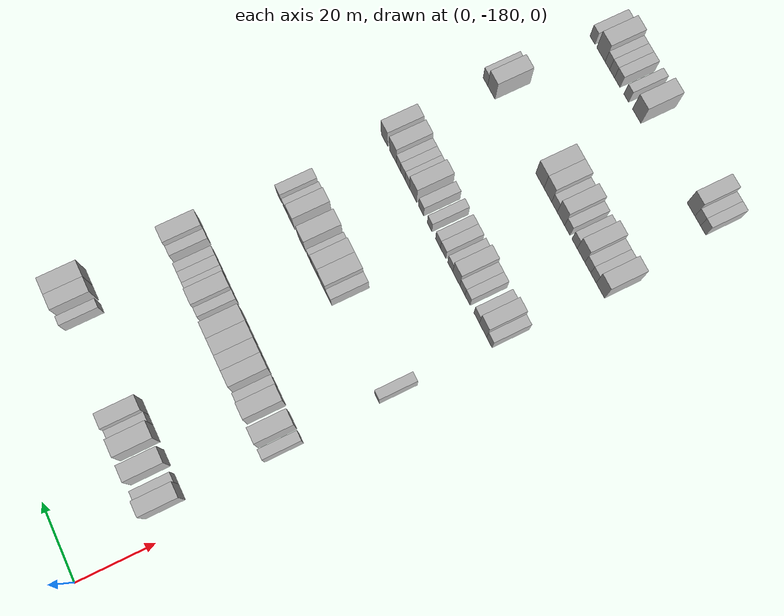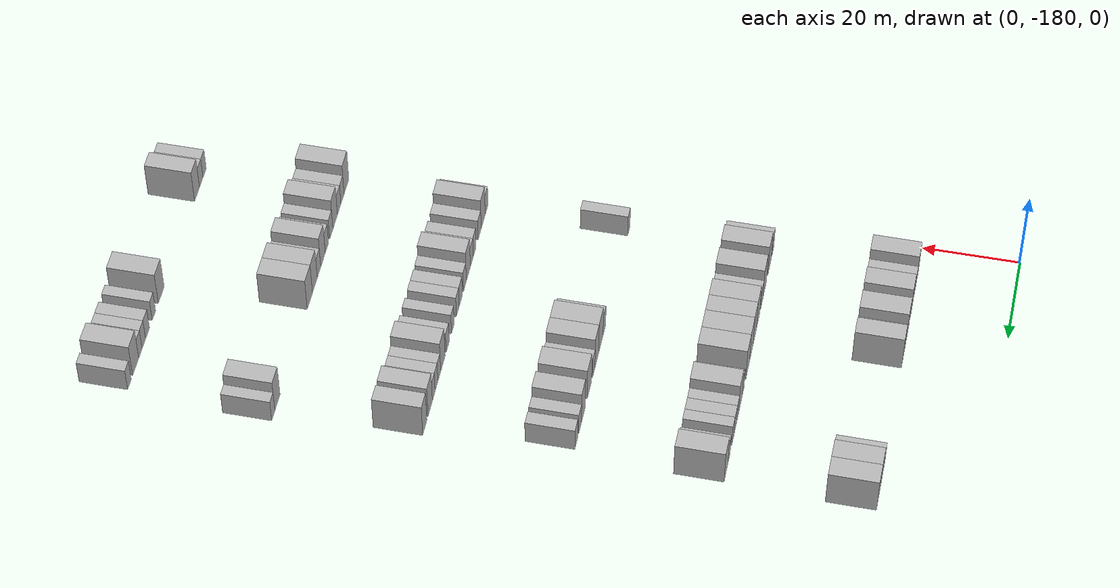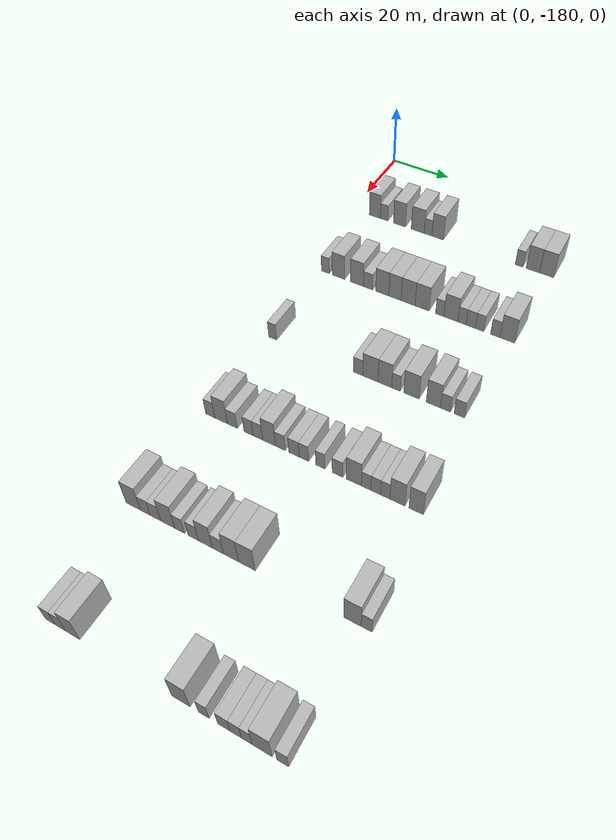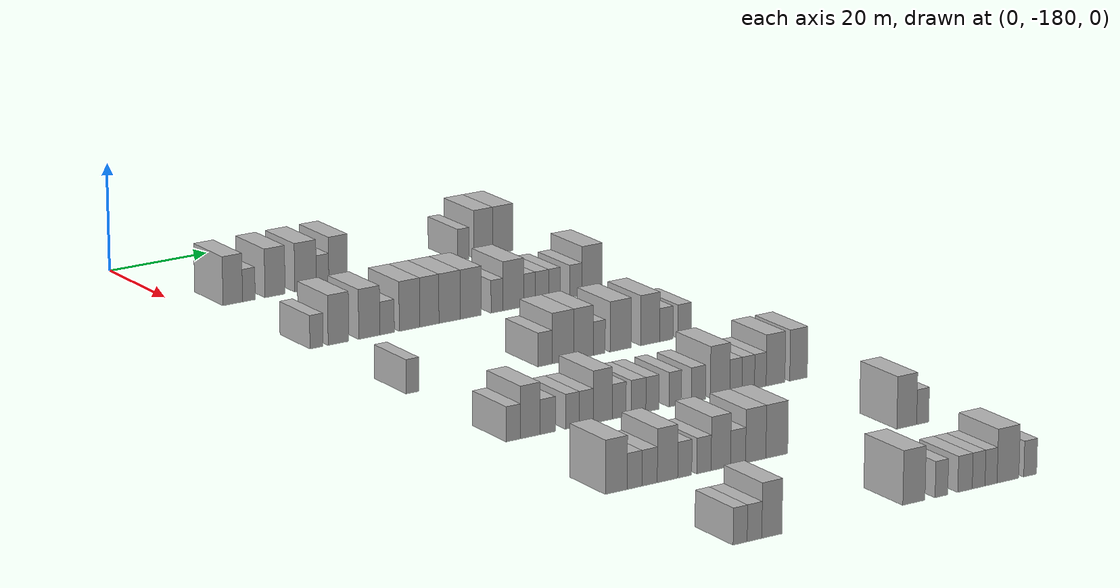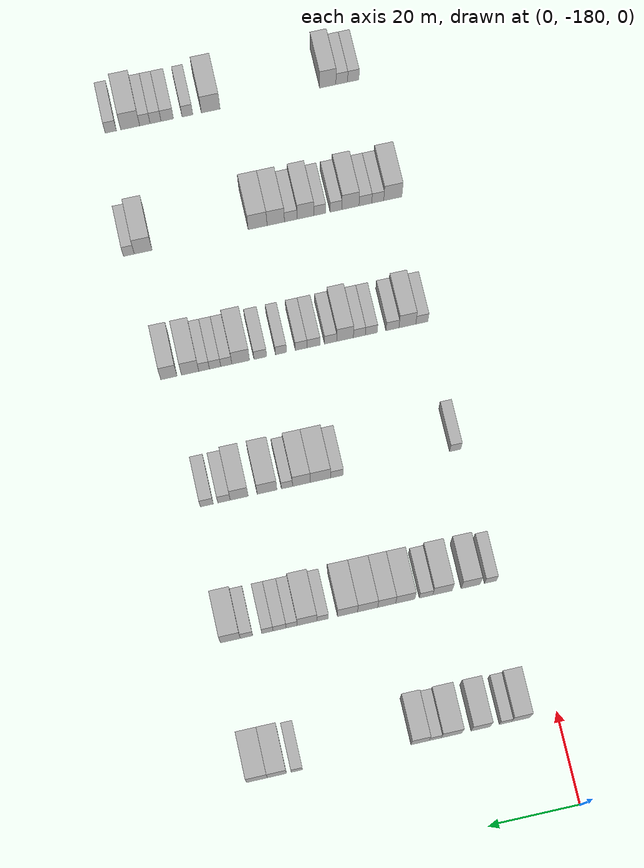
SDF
<sdf version="1.6">
 <world name="default">
  <model name="building_74">
   <static>1</static>
   <pose>25.0000 -171.9958 0 0.000000 0.000000 0.000000</pose>
   <link name="link">
    <pose>0 0 4.50 0 0 0</pose>
    <collision name="collision"><geometry><box><size>10.0000 3.9927 9.0000</size></box></geometry></collision>
    <visual name="visual">
     <cast_shadows>0</cast_shadows>
     <geometry><box><size>10.0000 3.9927 9.0000</size></box></geometry>
     <material>
      <script>
       <uri>model://HANNAS_wall/materials/scripts</uri>
       <uri>model://HANNAS_wall/materials/textures</uri>
       <name>vrc/HANNAS_wall</name>
      </script>
     </material>
    </visual>
   </link>
  </model>
  <model name="building_75">
   <static>1</static>
   <pose>25.0000 -168.7039 0 0.000000 0.000000 0.000000</pose>
   <link name="link">
    <pose>0 0 3.00 0 0 0</pose>
    <collision name="collision"><geometry><box><size>10.0000 2.5911 6.0000</size></box></geometry></collision>
    <visual name="visual">
     <cast_shadows>0</cast_shadows>
     <geometry><box><size>10.0000 2.5911 6.0000</size></box></geometry>
     <material>
      <script>
       <uri>model://HANNAS_wall/materials/scripts</uri>
       <uri>model://HANNAS_wall/materials/textures</uri>
       <name>vrc/HANNAS_wall</name>
      </script>
     </material>
    </visual>
   </link>
  </model>
  <model name="building_76">
   <static>1</static>
   <pose>25.0000 -163.3264 0 0.000000 0.000000 0.000000</pose>
   <link name="link">
    <pose>0 0 4.50 0 0 0</pose>
    <collision name="collision"><geometry><box><size>10.0000 4.1639 9.0000</size></box></geometry></collision>
    <visual name="visual">
     <cast_shadows>0</cast_shadows>
     <geometry><box><size>10.0000 4.1639 9.0000</size></box></geometry>
     <material>
      <script>
       <uri>model://HANNAS_wall/materials/scripts</uri>
       <uri>model://HANNAS_wall/materials/textures</uri>
       <name>vrc/HANNAS_wall</name>
      </script>
     </material>
    </visual>
   </link>
  </model>
  <model name="building_77">
   <static>1</static>
   <pose>25.0000 -157.0064 0 0.000000 0.000000 0.000000</pose>
   <link name="link">
    <pose>0 0 4.50 0 0 0</pose>
    <collision name="collision"><geometry><box><size>10.0000 4.4759 9.0000</size></box></geometry></collision>
    <visual name="visual">
     <cast_shadows>0</cast_shadows>
     <geometry><box><size>10.0000 4.4759 9.0000</size></box></geometry>
     <material>
      <script>
       <uri>model://HANNAS_wall/materials/scripts</uri>
       <uri>model://HANNAS_wall/materials/textures</uri>
       <name>vrc/HANNAS_wall</name>
      </script>
     </material>
    </visual>
   </link>
  </model>
  <model name="building_78">
   <static>1</static>
   <pose>25.0000 -153.4630 0 0.000000 0.000000 0.000000</pose>
   <link name="link">
    <pose>0 0 3.00 0 0 0</pose>
    <collision name="collision"><geometry><box><size>10.0000 2.6110 6.0000</size></box></geometry></collision>
    <visual name="visual">
     <cast_shadows>0</cast_shadows>
     <geometry><box><size>10.0000 2.6110 6.0000</size></box></geometry>
     <material>
      <script>
       <uri>model://HANNAS_wall/materials/scripts</uri>
       <uri>model://HANNAS_wall/materials/textures</uri>
       <name>vrc/HANNAS_wall</name>
      </script>
     </material>
    </visual>
   </link>
  </model>
  <model name="building_79">
   <static>1</static>
   <pose>25.0000 -150.1864 0 0.000000 0.000000 0.000000</pose>
   <link name="link">
    <pose>0 0 4.50 0 0 0</pose>
    <collision name="collision"><geometry><box><size>10.0000 3.9421 9.0000</size></box></geometry></collision>
    <visual name="visual">
     <cast_shadows>0</cast_shadows>
     <geometry><box><size>10.0000 3.9421 9.0000</size></box></geometry>
     <material>
      <script>
       <uri>model://HANNAS_wall/materials/scripts</uri>
       <uri>model://HANNAS_wall/materials/textures</uri>
       <name>vrc/HANNAS_wall</name>
      </script>
     </material>
    </visual>
   </link>
  </model>
  <model name="building_80">
   <static>1</static>
   <pose>25.0000 -123.5482 0 0.000000 0.000000 0.000000</pose>
   <link name="link">
    <pose>0 0 3.00 0 0 0</pose>
    <collision name="collision"><geometry><box><size>10.0000 2.4448 6.0000</size></box></geometry></collision>
    <visual name="visual">
     <cast_shadows>0</cast_shadows>
     <geometry><box><size>10.0000 2.4448 6.0000</size></box></geometry>
     <material>
      <script>
       <uri>model://HANNAS_wall/materials/scripts</uri>
       <uri>model://HANNAS_wall/materials/textures</uri>
       <name>vrc/HANNAS_wall</name>
      </script>
     </material>
    </visual>
   </link>
  </model>
  <model name="building_81">
   <static>1</static>
   <pose>25.0000 -119.2652 0 0.000000 0.000000 0.000000</pose>
   <link name="link">
    <pose>0 0 4.50 0 0 0</pose>
    <collision name="collision"><geometry><box><size>10.0000 4.1213 9.0000</size></box></geometry></collision>
    <visual name="visual">
     <cast_shadows>0</cast_shadows>
     <geometry><box><size>10.0000 4.1213 9.0000</size></box></geometry>
     <material>
      <script>
       <uri>model://HANNAS_wall/materials/scripts</uri>
       <uri>model://HANNAS_wall/materials/textures</uri>
       <name>vrc/HANNAS_wall</name>
      </script>
     </material>
    </visual>
   </link>
  </model>
  <model name="building_82">
   <static>1</static>
   <pose>25.0000 -114.9816 0 0.000000 0.000000 0.000000</pose>
   <link name="link">
    <pose>0 0 4.50 0 0 0</pose>
    <collision name="collision"><geometry><box><size>10.0000 4.4458 9.0000</size></box></geometry></collision>
    <visual name="visual">
     <cast_shadows>0</cast_shadows>
     <geometry><box><size>10.0000 4.4458 9.0000</size></box></geometry>
     <material>
      <script>
       <uri>model://HANNAS_wall/materials/scripts</uri>
       <uri>model://HANNAS_wall/materials/textures</uri>
       <name>vrc/HANNAS_wall</name>
      </script>
     </material>
    </visual>
   </link>
  </model>
  <model name="building_299">
   <static>1</static>
   <pose>55.0000 -172.9315 0 0.000000 0.000000 0.000000</pose>
   <link name="link">
    <pose>0 0 3.00 0 0 0</pose>
    <collision name="collision"><geometry><box><size>10.0000 2.6503 6.0000</size></box></geometry></collision>
    <visual name="visual">
     <cast_shadows>0</cast_shadows>
     <geometry><box><size>10.0000 2.6503 6.0000</size></box></geometry>
     <material>
      <script>
       <uri>model://HANNAS_wall/materials/scripts</uri>
       <uri>model://HANNAS_wall/materials/textures</uri>
       <name>vrc/HANNAS_wall</name>
      </script>
     </material>
    </visual>
   </link>
  </model>
  <model name="building_300">
   <static>1</static>
   <pose>55.0000 -168.5186 0 0.000000 0.000000 0.000000</pose>
   <link name="link">
    <pose>0 0 4.50 0 0 0</pose>
    <collision name="collision"><geometry><box><size>10.0000 4.1756 9.0000</size></box></geometry></collision>
    <visual name="visual">
     <cast_shadows>0</cast_shadows>
     <geometry><box><size>10.0000 4.1756 9.0000</size></box></geometry>
     <material>
      <script>
       <uri>model://HANNAS_wall/materials/scripts</uri>
       <uri>model://HANNAS_wall/materials/textures</uri>
       <name>vrc/HANNAS_wall</name>
      </script>
     </material>
    </visual>
   </link>
  </model>
  <model name="building_301">
   <static>1</static>
   <pose>55.0000 -162.2857 0 0.000000 0.000000 0.000000</pose>
   <link name="link">
    <pose>0 0 4.50 0 0 0</pose>
    <collision name="collision"><geometry><box><size>10.0000 4.2903 9.0000</size></box></geometry></collision>
    <visual name="visual">
     <cast_shadows>0</cast_shadows>
     <geometry><box><size>10.0000 4.2903 9.0000</size></box></geometry>
     <material>
      <script>
       <uri>model://HANNAS_wall/materials/scripts</uri>
       <uri>model://HANNAS_wall/materials/textures</uri>
       <name>vrc/HANNAS_wall</name>
      </script>
     </material>
    </visual>
   </link>
  </model>
  <model name="building_302">
   <static>1</static>
   <pose>55.0000 -158.6615 0 0.000000 0.000000 0.000000</pose>
   <link name="link">
    <pose>0 0 3.00 0 0 0</pose>
    <collision name="collision"><geometry><box><size>10.0000 2.9580 6.0000</size></box></geometry></collision>
    <visual name="visual">
     <cast_shadows>0</cast_shadows>
     <geometry><box><size>10.0000 2.9580 6.0000</size></box></geometry>
     <material>
      <script>
       <uri>model://HANNAS_wall/materials/scripts</uri>
       <uri>model://HANNAS_wall/materials/textures</uri>
       <name>vrc/HANNAS_wall</name>
      </script>
     </material>
    </visual>
   </link>
  </model>
  <model name="building_303">
   <static>1</static>
   <pose>55.0000 -154.0724 0 0.000000 0.000000 0.000000</pose>
   <link name="link">
    <pose>0 0 4.50 0 0 0</pose>
    <collision name="collision"><geometry><box><size>10.0000 4.2204 9.0000</size></box></geometry></collision>
    <visual name="visual">
     <cast_shadows>0</cast_shadows>
     <geometry><box><size>10.0000 4.2204 9.0000</size></box></geometry>
     <material>
      <script>
       <uri>model://HANNAS_wall/materials/scripts</uri>
       <uri>model://HANNAS_wall/materials/textures</uri>
       <name>vrc/HANNAS_wall</name>
      </script>
     </material>
    </visual>
   </link>
  </model>
  <model name="building_304">
   <static>1</static>
   <pose>55.0000 -149.9849 0 0.000000 0.000000 0.000000</pose>
   <link name="link">
    <pose>0 0 4.50 0 0 0</pose>
    <collision name="collision"><geometry><box><size>10.0000 3.9546 9.0000</size></box></geometry></collision>
    <visual name="visual">
     <cast_shadows>0</cast_shadows>
     <geometry><box><size>10.0000 3.9546 9.0000</size></box></geometry>
     <material>
      <script>
       <uri>model://HANNAS_wall/materials/scripts</uri>
       <uri>model://HANNAS_wall/materials/textures</uri>
       <name>vrc/HANNAS_wall</name>
      </script>
     </material>
    </visual>
   </link>
  </model>
  <model name="building_305">
   <static>1</static>
   <pose>55.0000 -145.7942 0 0.000000 0.000000 0.000000</pose>
   <link name="link">
    <pose>0 0 4.50 0 0 0</pose>
    <collision name="collision"><geometry><box><size>10.0000 4.4267 9.0000</size></box></geometry></collision>
    <visual name="visual">
     <cast_shadows>0</cast_shadows>
     <geometry><box><size>10.0000 4.4267 9.0000</size></box></geometry>
     <material>
      <script>
       <uri>model://HANNAS_wall/materials/scripts</uri>
       <uri>model://HANNAS_wall/materials/textures</uri>
       <name>vrc/HANNAS_wall</name>
      </script>
     </material>
    </visual>
   </link>
  </model>
  <model name="building_306">
   <static>1</static>
   <pose>55.0000 -141.3766 0 0.000000 0.000000 0.000000</pose>
   <link name="link">
    <pose>0 0 4.50 0 0 0</pose>
    <collision name="collision"><geometry><box><size>10.0000 4.4085 9.0000</size></box></geometry></collision>
    <visual name="visual">
     <cast_shadows>0</cast_shadows>
     <geometry><box><size>10.0000 4.4085 9.0000</size></box></geometry>
     <material>
      <script>
       <uri>model://HANNAS_wall/materials/scripts</uri>
       <uri>model://HANNAS_wall/materials/textures</uri>
       <name>vrc/HANNAS_wall</name>
      </script>
     </material>
    </visual>
   </link>
  </model>
  <model name="building_307">
   <static>1</static>
   <pose>55.0000 -135.9123 0 0.000000 0.000000 0.000000</pose>
   <link name="link">
    <pose>0 0 3.00 0 0 0</pose>
    <collision name="collision"><geometry><box><size>10.0000 2.5200 6.0000</size></box></geometry></collision>
    <visual name="visual">
     <cast_shadows>0</cast_shadows>
     <geometry><box><size>10.0000 2.5200 6.0000</size></box></geometry>
     <material>
      <script>
       <uri>model://HANNAS_wall/materials/scripts</uri>
       <uri>model://HANNAS_wall/materials/textures</uri>
       <name>vrc/HANNAS_wall</name>
      </script>
     </material>
    </visual>
   </link>
  </model>
  <model name="building_308">
   <static>1</static>
   <pose>55.0000 -132.4949 0 0.000000 0.000000 0.000000</pose>
   <link name="link">
    <pose>0 0 4.50 0 0 0</pose>
    <collision name="collision"><geometry><box><size>10.0000 4.3149 9.0000</size></box></geometry></collision>
    <visual name="visual">
     <cast_shadows>0</cast_shadows>
     <geometry><box><size>10.0000 4.3149 9.0000</size></box></geometry>
     <material>
      <script>
       <uri>model://HANNAS_wall/materials/scripts</uri>
       <uri>model://HANNAS_wall/materials/textures</uri>
       <name>vrc/HANNAS_wall</name>
      </script>
     </material>
    </visual>
   </link>
  </model>
  <model name="building_309">
   <static>1</static>
   <pose>55.0000 -129.1189 0 0.000000 0.000000 0.000000</pose>
   <link name="link">
    <pose>0 0 3.00 0 0 0</pose>
    <collision name="collision"><geometry><box><size>10.0000 2.4370 6.0000</size></box></geometry></collision>
    <visual name="visual">
     <cast_shadows>0</cast_shadows>
     <geometry><box><size>10.0000 2.4370 6.0000</size></box></geometry>
     <material>
      <script>
       <uri>model://HANNAS_wall/materials/scripts</uri>
       <uri>model://HANNAS_wall/materials/textures</uri>
       <name>vrc/HANNAS_wall</name>
      </script>
     </material>
    </visual>
   </link>
  </model>
  <model name="building_310">
   <static>1</static>
   <pose>55.0000 -126.4706 0 0.000000 0.000000 0.000000</pose>
   <link name="link">
    <pose>0 0 3.00 0 0 0</pose>
    <collision name="collision"><geometry><box><size>10.0000 2.8597 6.0000</size></box></geometry></collision>
    <visual name="visual">
     <cast_shadows>0</cast_shadows>
     <geometry><box><size>10.0000 2.8597 6.0000</size></box></geometry>
     <material>
      <script>
       <uri>model://HANNAS_wall/materials/scripts</uri>
       <uri>model://HANNAS_wall/materials/textures</uri>
       <name>vrc/HANNAS_wall</name>
      </script>
     </material>
    </visual>
   </link>
  </model>
  <model name="building_311">
   <static>1</static>
   <pose>55.0000 -123.8034 0 0.000000 0.000000 0.000000</pose>
   <link name="link">
    <pose>0 0 3.00 0 0 0</pose>
    <collision name="collision"><geometry><box><size>10.0000 2.4747 6.0000</size></box></geometry></collision>
    <visual name="visual">
     <cast_shadows>0</cast_shadows>
     <geometry><box><size>10.0000 2.4747 6.0000</size></box></geometry>
     <material>
      <script>
       <uri>model://HANNAS_wall/materials/scripts</uri>
       <uri>model://HANNAS_wall/materials/textures</uri>
       <name>vrc/HANNAS_wall</name>
      </script>
     </material>
    </visual>
   </link>
  </model>
  <model name="building_312">
   <static>1</static>
   <pose>55.0000 -119.2112 0 0.000000 0.000000 0.000000</pose>
   <link name="link">
    <pose>0 0 3.00 0 0 0</pose>
    <collision name="collision"><geometry><box><size>10.0000 2.7096 6.0000</size></box></geometry></collision>
    <visual name="visual">
     <cast_shadows>0</cast_shadows>
     <geometry><box><size>10.0000 2.7096 6.0000</size></box></geometry>
     <material>
      <script>
       <uri>model://HANNAS_wall/materials/scripts</uri>
       <uri>model://HANNAS_wall/materials/textures</uri>
       <name>vrc/HANNAS_wall</name>
      </script>
     </material>
    </visual>
   </link>
  </model>
  <model name="building_313">
   <static>1</static>
   <pose>55.0000 -115.6786 0 0.000000 0.000000 0.000000</pose>
   <link name="link">
    <pose>0 0 4.50 0 0 0</pose>
    <collision name="collision"><geometry><box><size>10.0000 4.3556 9.0000</size></box></geometry></collision>
    <visual name="visual">
     <cast_shadows>0</cast_shadows>
     <geometry><box><size>10.0000 4.3556 9.0000</size></box></geometry>
     <material>
      <script>
       <uri>model://HANNAS_wall/materials/scripts</uri>
       <uri>model://HANNAS_wall/materials/textures</uri>
       <name>vrc/HANNAS_wall</name>
      </script>
     </material>
    </visual>
   </link>
  </model>
  <model name="building_531">
   <static>1</static>
   <pose>85.0000 -172.4128 0 0.000000 0.000000 0.000000</pose>
   <link name="link">
    <pose>0 0 3.00 0 0 0</pose>
    <collision name="collision"><geometry><box><size>10.0000 2.5256 6.0000</size></box></geometry></collision>
    <visual name="visual">
     <cast_shadows>0</cast_shadows>
     <geometry><box><size>10.0000 2.5256 6.0000</size></box></geometry>
     <material>
      <script>
       <uri>model://HANNAS_wall/materials/scripts</uri>
       <uri>model://HANNAS_wall/materials/textures</uri>
       <name>vrc/HANNAS_wall</name>
      </script>
     </material>
    </visual>
   </link>
  </model>
  <model name="building_532">
   <static>1</static>
   <pose>85.0000 -145.8590 0 0.000000 0.000000 0.000000</pose>
   <link name="link">
    <pose>0 0 3.00 0 0 0</pose>
    <collision name="collision"><geometry><box><size>10.0000 2.8606 6.0000</size></box></geometry></collision>
    <visual name="visual">
     <cast_shadows>0</cast_shadows>
     <geometry><box><size>10.0000 2.8606 6.0000</size></box></geometry>
     <material>
      <script>
       <uri>model://HANNAS_wall/materials/scripts</uri>
       <uri>model://HANNAS_wall/materials/textures</uri>
       <name>vrc/HANNAS_wall</name>
      </script>
     </material>
    </visual>
   </link>
  </model>
  <model name="building_533">
   <static>1</static>
   <pose>85.0000 -142.1792 0 0.000000 0.000000 0.000000</pose>
   <link name="link">
    <pose>0 0 4.50 0 0 0</pose>
    <collision name="collision"><geometry><box><size>10.0000 4.4989 9.0000</size></box></geometry></collision>
    <visual name="visual">
     <cast_shadows>0</cast_shadows>
     <geometry><box><size>10.0000 4.4989 9.0000</size></box></geometry>
     <material>
      <script>
       <uri>model://HANNAS_wall/materials/scripts</uri>
       <uri>model://HANNAS_wall/materials/textures</uri>
       <name>vrc/HANNAS_wall</name>
      </script>
     </material>
    </visual>
   </link>
  </model>
  <model name="building_534">
   <static>1</static>
   <pose>85.0000 -137.9498 0 0.000000 0.000000 0.000000</pose>
   <link name="link">
    <pose>0 0 4.50 0 0 0</pose>
    <collision name="collision"><geometry><box><size>10.0000 3.9599 9.0000</size></box></geometry></collision>
    <visual name="visual">
     <cast_shadows>0</cast_shadows>
     <geometry><box><size>10.0000 3.9599 9.0000</size></box></geometry>
     <material>
      <script>
       <uri>model://HANNAS_wall/materials/scripts</uri>
       <uri>model://HANNAS_wall/materials/textures</uri>
       <name>vrc/HANNAS_wall</name>
      </script>
     </material>
    </visual>
   </link>
  </model>
  <model name="building_535">
   <static>1</static>
   <pose>85.0000 -134.7226 0 0.000000 0.000000 0.000000</pose>
   <link name="link">
    <pose>0 0 3.00 0 0 0</pose>
    <collision name="collision"><geometry><box><size>10.0000 2.4945 6.0000</size></box></geometry></collision>
    <visual name="visual">
     <cast_shadows>0</cast_shadows>
     <geometry><box><size>10.0000 2.4945 6.0000</size></box></geometry>
     <material>
      <script>
       <uri>model://HANNAS_wall/materials/scripts</uri>
       <uri>model://HANNAS_wall/materials/textures</uri>
       <name>vrc/HANNAS_wall</name>
      </script>
     </material>
    </visual>
   </link>
  </model>
  <model name="building_536">
   <static>1</static>
   <pose>85.0000 -130.2748 0 0.000000 0.000000 0.000000</pose>
   <link name="link">
    <pose>0 0 4.50 0 0 0</pose>
    <collision name="collision"><geometry><box><size>10.0000 4.4010 9.0000</size></box></geometry></collision>
    <visual name="visual">
     <cast_shadows>0</cast_shadows>
     <geometry><box><size>10.0000 4.4010 9.0000</size></box></geometry>
     <material>
      <script>
       <uri>model://HANNAS_wall/materials/scripts</uri>
       <uri>model://HANNAS_wall/materials/textures</uri>
       <name>vrc/HANNAS_wall</name>
      </script>
     </material>
    </visual>
   </link>
  </model>
  <model name="building_537">
   <static>1</static>
   <pose>85.0000 -124.0777 0 0.000000 0.000000 0.000000</pose>
   <link name="link">
    <pose>0 0 4.50 0 0 0</pose>
    <collision name="collision"><geometry><box><size>10.0000 3.9933 9.0000</size></box></geometry></collision>
    <visual name="visual">
     <cast_shadows>0</cast_shadows>
     <geometry><box><size>10.0000 3.9933 9.0000</size></box></geometry>
     <material>
      <script>
       <uri>model://HANNAS_wall/materials/scripts</uri>
       <uri>model://HANNAS_wall/materials/textures</uri>
       <name>vrc/HANNAS_wall</name>
      </script>
     </material>
    </visual>
   </link>
  </model>
  <model name="building_538">
   <static>1</static>
   <pose>85.0000 -120.6963 0 0.000000 0.000000 0.000000</pose>
   <link name="link">
    <pose>0 0 3.00 0 0 0</pose>
    <collision name="collision"><geometry><box><size>10.0000 2.7695 6.0000</size></box></geometry></collision>
    <visual name="visual">
     <cast_shadows>0</cast_shadows>
     <geometry><box><size>10.0000 2.7695 6.0000</size></box></geometry>
     <material>
      <script>
       <uri>model://HANNAS_wall/materials/scripts</uri>
       <uri>model://HANNAS_wall/materials/textures</uri>
       <name>vrc/HANNAS_wall</name>
      </script>
     </material>
    </visual>
   </link>
  </model>
  <model name="building_539">
   <static>1</static>
   <pose>85.0000 -116.8685 0 0.000000 0.000000 0.000000</pose>
   <link name="link">
    <pose>0 0 3.00 0 0 0</pose>
    <collision name="collision"><geometry><box><size>10.0000 2.8860 6.0000</size></box></geometry></collision>
    <visual name="visual">
     <cast_shadows>0</cast_shadows>
     <geometry><box><size>10.0000 2.8860 6.0000</size></box></geometry>
     <material>
      <script>
       <uri>model://HANNAS_wall/materials/scripts</uri>
       <uri>model://HANNAS_wall/materials/textures</uri>
       <name>vrc/HANNAS_wall</name>
      </script>
     </material>
    </visual>
   </link>
  </model>
  <model name="building_749">
   <static>1</static>
   <pose>115.0000 -172.0815 0 0.000000 0.000000 0.000000</pose>
   <link name="link">
    <pose>0 0 3.00 0 0 0</pose>
    <collision name="collision"><geometry><box><size>10.0000 2.7747 6.0000</size></box></geometry></collision>
    <visual name="visual">
     <cast_shadows>0</cast_shadows>
     <geometry><box><size>10.0000 2.7747 6.0000</size></box></geometry>
     <material>
      <script>
       <uri>model://HANNAS_wall/materials/scripts</uri>
       <uri>model://HANNAS_wall/materials/textures</uri>
       <name>vrc/HANNAS_wall</name>
      </script>
     </material>
    </visual>
   </link>
  </model>
  <model name="building_750">
   <static>1</static>
   <pose>115.0000 -168.7714 0 0.000000 0.000000 0.000000</pose>
   <link name="link">
    <pose>0 0 4.50 0 0 0</pose>
    <collision name="collision"><geometry><box><size>10.0000 3.8456 9.0000</size></box></geometry></collision>
    <visual name="visual">
     <cast_shadows>0</cast_shadows>
     <geometry><box><size>10.0000 3.8456 9.0000</size></box></geometry>
     <material>
      <script>
       <uri>model://HANNAS_wall/materials/scripts</uri>
       <uri>model://HANNAS_wall/materials/textures</uri>
       <name>vrc/HANNAS_wall</name>
      </script>
     </material>
    </visual>
   </link>
  </model>
  <model name="building_751">
   <static>1</static>
   <pose>115.0000 -165.3752 0 0.000000 0.000000 0.000000</pose>
   <link name="link">
    <pose>0 0 3.00 0 0 0</pose>
    <collision name="collision"><geometry><box><size>10.0000 2.9469 6.0000</size></box></geometry></collision>
    <visual name="visual">
     <cast_shadows>0</cast_shadows>
     <geometry><box><size>10.0000 2.9469 6.0000</size></box></geometry>
     <material>
      <script>
       <uri>model://HANNAS_wall/materials/scripts</uri>
       <uri>model://HANNAS_wall/materials/textures</uri>
       <name>vrc/HANNAS_wall</name>
      </script>
     </material>
    </visual>
   </link>
  </model>
  <model name="building_752">
   <static>1</static>
   <pose>115.0000 -160.5523 0 0.000000 0.000000 0.000000</pose>
   <link name="link">
    <pose>0 0 3.00 0 0 0</pose>
    <collision name="collision"><geometry><box><size>10.0000 2.6988 6.0000</size></box></geometry></collision>
    <visual name="visual">
     <cast_shadows>0</cast_shadows>
     <geometry><box><size>10.0000 2.6988 6.0000</size></box></geometry>
     <material>
      <script>
       <uri>model://HANNAS_wall/materials/scripts</uri>
       <uri>model://HANNAS_wall/materials/textures</uri>
       <name>vrc/HANNAS_wall</name>
      </script>
     </material>
    </visual>
   </link>
  </model>
  <model name="building_753">
   <static>1</static>
   <pose>115.0000 -157.8251 0 0.000000 0.000000 0.000000</pose>
   <link name="link">
    <pose>0 0 3.00 0 0 0</pose>
    <collision name="collision"><geometry><box><size>10.0000 2.7555 6.0000</size></box></geometry></collision>
    <visual name="visual">
     <cast_shadows>0</cast_shadows>
     <geometry><box><size>10.0000 2.7555 6.0000</size></box></geometry>
     <material>
      <script>
       <uri>model://HANNAS_wall/materials/scripts</uri>
       <uri>model://HANNAS_wall/materials/textures</uri>
       <name>vrc/HANNAS_wall</name>
      </script>
     </material>
    </visual>
   </link>
  </model>
  <model name="building_754">
   <static>1</static>
   <pose>115.0000 -154.5490 0 0.000000 0.000000 0.000000</pose>
   <link name="link">
    <pose>0 0 4.50 0 0 0</pose>
    <collision name="collision"><geometry><box><size>10.0000 3.7968 9.0000</size></box></geometry></collision>
    <visual name="visual">
     <cast_shadows>0</cast_shadows>
     <geometry><box><size>10.0000 3.7968 9.0000</size></box></geometry>
     <material>
      <script>
       <uri>model://HANNAS_wall/materials/scripts</uri>
       <uri>model://HANNAS_wall/materials/textures</uri>
       <name>vrc/HANNAS_wall</name>
      </script>
     </material>
    </visual>
   </link>
  </model>
  <model name="building_755">
   <static>1</static>
   <pose>115.0000 -151.2695 0 0.000000 0.000000 0.000000</pose>
   <link name="link">
    <pose>0 0 3.00 0 0 0</pose>
    <collision name="collision"><geometry><box><size>10.0000 2.7621 6.0000</size></box></geometry></collision>
    <visual name="visual">
     <cast_shadows>0</cast_shadows>
     <geometry><box><size>10.0000 2.7621 6.0000</size></box></geometry>
     <material>
      <script>
       <uri>model://HANNAS_wall/materials/scripts</uri>
       <uri>model://HANNAS_wall/materials/textures</uri>
       <name>vrc/HANNAS_wall</name>
      </script>
     </material>
    </visual>
   </link>
  </model>
  <model name="building_756">
   <static>1</static>
   <pose>115.0000 -147.4119 0 0.000000 0.000000 0.000000</pose>
   <link name="link">
    <pose>0 0 3.00 0 0 0</pose>
    <collision name="collision"><geometry><box><size>10.0000 2.9530 6.0000</size></box></geometry></collision>
    <visual name="visual">
     <cast_shadows>0</cast_shadows>
     <geometry><box><size>10.0000 2.9530 6.0000</size></box></geometry>
     <material>
      <script>
       <uri>model://HANNAS_wall/materials/scripts</uri>
       <uri>model://HANNAS_wall/materials/textures</uri>
       <name>vrc/HANNAS_wall</name>
      </script>
     </material>
    </visual>
   </link>
  </model>
  <model name="building_757">
   <static>1</static>
   <pose>115.0000 -144.5981 0 0.000000 0.000000 0.000000</pose>
   <link name="link">
    <pose>0 0 3.00 0 0 0</pose>
    <collision name="collision"><geometry><box><size>10.0000 2.6747 6.0000</size></box></geometry></collision>
    <visual name="visual">
     <cast_shadows>0</cast_shadows>
     <geometry><box><size>10.0000 2.6747 6.0000</size></box></geometry>
     <material>
      <script>
       <uri>model://HANNAS_wall/materials/scripts</uri>
       <uri>model://HANNAS_wall/materials/textures</uri>
       <name>vrc/HANNAS_wall</name>
      </script>
     </material>
    </visual>
   </link>
  </model>
  <model name="building_758">
   <static>1</static>
   <pose>115.0000 -140.0045 0 0.000000 0.000000 0.000000</pose>
   <link name="link">
    <pose>0 0 3.00 0 0 0</pose>
    <collision name="collision"><geometry><box><size>10.0000 2.5125 6.0000</size></box></geometry></collision>
    <visual name="visual">
     <cast_shadows>0</cast_shadows>
     <geometry><box><size>10.0000 2.5125 6.0000</size></box></geometry>
     <material>
      <script>
       <uri>model://HANNAS_wall/materials/scripts</uri>
       <uri>model://HANNAS_wall/materials/textures</uri>
       <name>vrc/HANNAS_wall</name>
      </script>
     </material>
    </visual>
   </link>
  </model>
  <model name="building_759">
   <static>1</static>
   <pose>115.0000 -135.3068 0 0.000000 0.000000 0.000000</pose>
   <link name="link">
    <pose>0 0 3.00 0 0 0</pose>
    <collision name="collision"><geometry><box><size>10.0000 2.8829 6.0000</size></box></geometry></collision>
    <visual name="visual">
     <cast_shadows>0</cast_shadows>
     <geometry><box><size>10.0000 2.8829 6.0000</size></box></geometry>
     <material>
      <script>
       <uri>model://HANNAS_wall/materials/scripts</uri>
       <uri>model://HANNAS_wall/materials/textures</uri>
       <name>vrc/HANNAS_wall</name>
      </script>
     </material>
    </visual>
   </link>
  </model>
  <model name="building_760">
   <static>1</static>
   <pose>115.0000 -130.8591 0 0.000000 0.000000 0.000000</pose>
   <link name="link">
    <pose>0 0 4.50 0 0 0</pose>
    <collision name="collision"><geometry><box><size>10.0000 4.0124 9.0000</size></box></geometry></collision>
    <visual name="visual">
     <cast_shadows>0</cast_shadows>
     <geometry><box><size>10.0000 4.0124 9.0000</size></box></geometry>
     <material>
      <script>
       <uri>model://HANNAS_wall/materials/scripts</uri>
       <uri>model://HANNAS_wall/materials/textures</uri>
       <name>vrc/HANNAS_wall</name>
      </script>
     </material>
    </visual>
   </link>
  </model>
  <model name="building_761">
   <static>1</static>
   <pose>115.0000 -127.6075 0 0.000000 0.000000 0.000000</pose>
   <link name="link">
    <pose>0 0 3.00 0 0 0</pose>
    <collision name="collision"><geometry><box><size>10.0000 2.4908 6.0000</size></box></geometry></collision>
    <visual name="visual">
     <cast_shadows>0</cast_shadows>
     <geometry><box><size>10.0000 2.4908 6.0000</size></box></geometry>
     <material>
      <script>
       <uri>model://HANNAS_wall/materials/scripts</uri>
       <uri>model://HANNAS_wall/materials/textures</uri>
       <name>vrc/HANNAS_wall</name>
      </script>
     </material>
    </visual>
   </link>
  </model>
  <model name="building_762">
   <static>1</static>
   <pose>115.0000 -125.0738 0 0.000000 0.000000 0.000000</pose>
   <link name="link">
    <pose>0 0 3.00 0 0 0</pose>
    <collision name="collision"><geometry><box><size>10.0000 2.5766 6.0000</size></box></geometry></collision>
    <visual name="visual">
     <cast_shadows>0</cast_shadows>
     <geometry><box><size>10.0000 2.5766 6.0000</size></box></geometry>
     <material>
      <script>
       <uri>model://HANNAS_wall/materials/scripts</uri>
       <uri>model://HANNAS_wall/materials/textures</uri>
       <name>vrc/HANNAS_wall</name>
      </script>
     </material>
    </visual>
   </link>
  </model>
  <model name="building_763">
   <static>1</static>
   <pose>115.0000 -122.5851 0 0.000000 0.000000 0.000000</pose>
   <link name="link">
    <pose>0 0 3.00 0 0 0</pose>
    <collision name="collision"><geometry><box><size>10.0000 2.4008 6.0000</size></box></geometry></collision>
    <visual name="visual">
     <cast_shadows>0</cast_shadows>
     <geometry><box><size>10.0000 2.4008 6.0000</size></box></geometry>
     <material>
      <script>
       <uri>model://HANNAS_wall/materials/scripts</uri>
       <uri>model://HANNAS_wall/materials/textures</uri>
       <name>vrc/HANNAS_wall</name>
      </script>
     </material>
    </visual>
   </link>
  </model>
  <model name="building_764">
   <static>1</static>
   <pose>115.0000 -119.4303 0 0.000000 0.000000 0.000000</pose>
   <link name="link">
    <pose>0 0 4.50 0 0 0</pose>
    <collision name="collision"><geometry><box><size>10.0000 3.9090 9.0000</size></box></geometry></collision>
    <visual name="visual">
     <cast_shadows>0</cast_shadows>
     <geometry><box><size>10.0000 3.9090 9.0000</size></box></geometry>
     <material>
      <script>
       <uri>model://HANNAS_wall/materials/scripts</uri>
       <uri>model://HANNAS_wall/materials/textures</uri>
       <name>vrc/HANNAS_wall</name>
      </script>
     </material>
    </visual>
   </link>
  </model>
  <model name="building_765">
   <static>1</static>
   <pose>115.0000 -114.6354 0 0.000000 0.000000 0.000000</pose>
   <link name="link">
    <pose>0 0 4.50 0 0 0</pose>
    <collision name="collision"><geometry><box><size>10.0000 3.6806 9.0000</size></box></geometry></collision>
    <visual name="visual">
     <cast_shadows>0</cast_shadows>
     <geometry><box><size>10.0000 3.6806 9.0000</size></box></geometry>
     <material>
      <script>
       <uri>model://HANNAS_wall/materials/scripts</uri>
       <uri>model://HANNAS_wall/materials/textures</uri>
       <name>vrc/HANNAS_wall</name>
      </script>
     </material>
    </visual>
   </link>
  </model>
  <model name="building_985">
   <static>1</static>
   <pose>145.0000 -172.5068 0 0.000000 0.000000 0.000000</pose>
   <link name="link">
    <pose>0 0 4.50 0 0 0</pose>
    <collision name="collision"><geometry><box><size>10.0000 4.2026 9.0000</size></box></geometry></collision>
    <visual name="visual">
     <cast_shadows>0</cast_shadows>
     <geometry><box><size>10.0000 4.2026 9.0000</size></box></geometry>
     <material>
      <script>
       <uri>model://HANNAS_wall/materials/scripts</uri>
       <uri>model://HANNAS_wall/materials/textures</uri>
       <name>vrc/HANNAS_wall</name>
      </script>
     </material>
    </visual>
   </link>
  </model>
  <model name="building_986">
   <static>1</static>
   <pose>145.0000 -169.0190 0 0.000000 0.000000 0.000000</pose>
   <link name="link">
    <pose>0 0 3.00 0 0 0</pose>
    <collision name="collision"><geometry><box><size>10.0000 2.7730 6.0000</size></box></geometry></collision>
    <visual name="visual">
     <cast_shadows>0</cast_shadows>
     <geometry><box><size>10.0000 2.7730 6.0000</size></box></geometry>
     <material>
      <script>
       <uri>model://HANNAS_wall/materials/scripts</uri>
       <uri>model://HANNAS_wall/materials/textures</uri>
       <name>vrc/HANNAS_wall</name>
      </script>
     </material>
    </visual>
   </link>
  </model>
  <model name="building_987">
   <static>1</static>
   <pose>145.0000 -166.1459 0 0.000000 0.000000 0.000000</pose>
   <link name="link">
    <pose>0 0 3.00 0 0 0</pose>
    <collision name="collision"><geometry><box><size>10.0000 2.9733 6.0000</size></box></geometry></collision>
    <visual name="visual">
     <cast_shadows>0</cast_shadows>
     <geometry><box><size>10.0000 2.9733 6.0000</size></box></geometry>
     <material>
      <script>
       <uri>model://HANNAS_wall/materials/scripts</uri>
       <uri>model://HANNAS_wall/materials/textures</uri>
       <name>vrc/HANNAS_wall</name>
      </script>
     </material>
    </visual>
   </link>
  </model>
  <model name="building_988">
   <static>1</static>
   <pose>145.0000 -162.6883 0 0.000000 0.000000 0.000000</pose>
   <link name="link">
    <pose>0 0 4.50 0 0 0</pose>
    <collision name="collision"><geometry><box><size>10.0000 3.9419 9.0000</size></box></geometry></collision>
    <visual name="visual">
     <cast_shadows>0</cast_shadows>
     <geometry><box><size>10.0000 3.9419 9.0000</size></box></geometry>
     <material>
      <script>
       <uri>model://HANNAS_wall/materials/scripts</uri>
       <uri>model://HANNAS_wall/materials/textures</uri>
       <name>vrc/HANNAS_wall</name>
      </script>
     </material>
    </visual>
   </link>
  </model>
  <model name="building_989">
   <static>1</static>
   <pose>145.0000 -159.3478 0 0.000000 0.000000 0.000000</pose>
   <link name="link">
    <pose>0 0 3.00 0 0 0</pose>
    <collision name="collision"><geometry><box><size>10.0000 2.7390 6.0000</size></box></geometry></collision>
    <visual name="visual">
     <cast_shadows>0</cast_shadows>
     <geometry><box><size>10.0000 2.7390 6.0000</size></box></geometry>
     <material>
      <script>
       <uri>model://HANNAS_wall/materials/scripts</uri>
       <uri>model://HANNAS_wall/materials/textures</uri>
       <name>vrc/HANNAS_wall</name>
      </script>
     </material>
    </visual>
   </link>
  </model>
  <model name="building_990">
   <static>1</static>
   <pose>145.0000 -155.5879 0 0.000000 0.000000 0.000000</pose>
   <link name="link">
    <pose>0 0 3.00 0 0 0</pose>
    <collision name="collision"><geometry><box><size>10.0000 2.7807 6.0000</size></box></geometry></collision>
    <visual name="visual">
     <cast_shadows>0</cast_shadows>
     <geometry><box><size>10.0000 2.7807 6.0000</size></box></geometry>
     <material>
      <script>
       <uri>model://HANNAS_wall/materials/scripts</uri>
       <uri>model://HANNAS_wall/materials/textures</uri>
       <name>vrc/HANNAS_wall</name>
      </script>
     </material>
    </visual>
   </link>
  </model>
  <model name="building_991">
   <static>1</static>
   <pose>145.0000 -152.2816 0 0.000000 0.000000 0.000000</pose>
   <link name="link">
    <pose>0 0 4.50 0 0 0</pose>
    <collision name="collision"><geometry><box><size>10.0000 3.8319 9.0000</size></box></geometry></collision>
    <visual name="visual">
     <cast_shadows>0</cast_shadows>
     <geometry><box><size>10.0000 3.8319 9.0000</size></box></geometry>
     <material>
      <script>
       <uri>model://HANNAS_wall/materials/scripts</uri>
       <uri>model://HANNAS_wall/materials/textures</uri>
       <name>vrc/HANNAS_wall</name>
      </script>
     </material>
    </visual>
   </link>
  </model>
  <model name="building_992">
   <static>1</static>
   <pose>145.0000 -148.8927 0 0.000000 0.000000 0.000000</pose>
   <link name="link">
    <pose>0 0 3.00 0 0 0</pose>
    <collision name="collision"><geometry><box><size>10.0000 2.9458 6.0000</size></box></geometry></collision>
    <visual name="visual">
     <cast_shadows>0</cast_shadows>
     <geometry><box><size>10.0000 2.9458 6.0000</size></box></geometry>
     <material>
      <script>
       <uri>model://HANNAS_wall/materials/scripts</uri>
       <uri>model://HANNAS_wall/materials/textures</uri>
       <name>vrc/HANNAS_wall</name>
      </script>
     </material>
    </visual>
   </link>
  </model>
  <model name="building_993">
   <static>1</static>
   <pose>145.0000 -145.4144 0 0.000000 0.000000 0.000000</pose>
   <link name="link">
    <pose>0 0 4.50 0 0 0</pose>
    <collision name="collision"><geometry><box><size>10.0000 4.0108 9.0000</size></box></geometry></collision>
    <visual name="visual">
     <cast_shadows>0</cast_shadows>
     <geometry><box><size>10.0000 4.0108 9.0000</size></box></geometry>
     <material>
      <script>
       <uri>model://HANNAS_wall/materials/scripts</uri>
       <uri>model://HANNAS_wall/materials/textures</uri>
       <name>vrc/HANNAS_wall</name>
      </script>
     </material>
    </visual>
   </link>
  </model>
  <model name="building_994">
   <static>1</static>
   <pose>145.0000 -141.2318 0 0.000000 0.000000 0.000000</pose>
   <link name="link">
    <pose>0 0 4.50 0 0 0</pose>
    <collision name="collision"><geometry><box><size>10.0000 4.3544 9.0000</size></box></geometry></collision>
    <visual name="visual">
     <cast_shadows>0</cast_shadows>
     <geometry><box><size>10.0000 4.3544 9.0000</size></box></geometry>
     <material>
      <script>
       <uri>model://HANNAS_wall/materials/scripts</uri>
       <uri>model://HANNAS_wall/materials/textures</uri>
       <name>vrc/HANNAS_wall</name>
      </script>
     </material>
    </visual>
   </link>
  </model>
  <model name="building_995">
   <static>1</static>
   <pose>145.0000 -114.9251 0 0.000000 0.000000 0.000000</pose>
   <link name="link">
    <pose>0 0 4.50 0 0 0</pose>
    <collision name="collision"><geometry><box><size>10.0000 4.0863 9.0000</size></box></geometry></collision>
    <visual name="visual">
     <cast_shadows>0</cast_shadows>
     <geometry><box><size>10.0000 4.0863 9.0000</size></box></geometry>
     <material>
      <script>
       <uri>model://HANNAS_wall/materials/scripts</uri>
       <uri>model://HANNAS_wall/materials/textures</uri>
       <name>vrc/HANNAS_wall</name>
      </script>
     </material>
    </visual>
   </link>
  </model>
  <model name="building_996">
   <static>1</static>
   <pose>145.0000 -111.6323 0 0.000000 0.000000 0.000000</pose>
   <link name="link">
    <pose>0 0 3.00 0 0 0</pose>
    <collision name="collision"><geometry><box><size>10.0000 2.4992 6.0000</size></box></geometry></collision>
    <visual name="visual">
     <cast_shadows>0</cast_shadows>
     <geometry><box><size>10.0000 2.4992 6.0000</size></box></geometry>
     <material>
      <script>
       <uri>model://HANNAS_wall/materials/scripts</uri>
       <uri>model://HANNAS_wall/materials/textures</uri>
       <name>vrc/HANNAS_wall</name>
      </script>
     </material>
    </visual>
   </link>
  </model>
  <model name="building_1207">
   <static>1</static>
   <pose>175.0000 -170.2503 0 0.000000 0.000000 0.000000</pose>
   <link name="link">
    <pose>0 0 3.00 0 0 0</pose>
    <collision name="collision"><geometry><box><size>10.0000 2.6508 6.0000</size></box></geometry></collision>
    <visual name="visual">
     <cast_shadows>0</cast_shadows>
     <geometry><box><size>10.0000 2.6508 6.0000</size></box></geometry>
     <material>
      <script>
       <uri>model://HANNAS_wall/materials/scripts</uri>
       <uri>model://HANNAS_wall/materials/textures</uri>
       <name>vrc/HANNAS_wall</name>
      </script>
     </material>
    </visual>
   </link>
  </model>
  <model name="building_1208">
   <static>1</static>
   <pose>175.0000 -167.5415 0 0.000000 0.000000 0.000000</pose>
   <link name="link">
    <pose>0 0 3.00 0 0 0</pose>
    <collision name="collision"><geometry><box><size>10.0000 2.7667 6.0000</size></box></geometry></collision>
    <visual name="visual">
     <cast_shadows>0</cast_shadows>
     <geometry><box><size>10.0000 2.7667 6.0000</size></box></geometry>
     <material>
      <script>
       <uri>model://HANNAS_wall/materials/scripts</uri>
       <uri>model://HANNAS_wall/materials/textures</uri>
       <name>vrc/HANNAS_wall</name>
      </script>
     </material>
    </visual>
   </link>
  </model>
  <model name="building_1209">
   <static>1</static>
   <pose>175.0000 -164.2416 0 0.000000 0.000000 0.000000</pose>
   <link name="link">
    <pose>0 0 4.50 0 0 0</pose>
    <collision name="collision"><geometry><box><size>10.0000 3.8332 9.0000</size></box></geometry></collision>
    <visual name="visual">
     <cast_shadows>0</cast_shadows>
     <geometry><box><size>10.0000 3.8332 9.0000</size></box></geometry>
     <material>
      <script>
       <uri>model://HANNAS_wall/materials/scripts</uri>
       <uri>model://HANNAS_wall/materials/textures</uri>
       <name>vrc/HANNAS_wall</name>
      </script>
     </material>
    </visual>
   </link>
  </model>
  <model name="building_1210">
   <static>1</static>
   <pose>175.0000 -136.7657 0 0.000000 0.000000 0.000000</pose>
   <link name="link">
    <pose>0 0 4.50 0 0 0</pose>
    <collision name="collision"><geometry><box><size>10.0000 4.3729 9.0000</size></box></geometry></collision>
    <visual name="visual">
     <cast_shadows>0</cast_shadows>
     <geometry><box><size>10.0000 4.3729 9.0000</size></box></geometry>
     <material>
      <script>
       <uri>model://HANNAS_wall/materials/scripts</uri>
       <uri>model://HANNAS_wall/materials/textures</uri>
       <name>vrc/HANNAS_wall</name>
      </script>
     </material>
    </visual>
   </link>
  </model>
  <model name="building_1211">
   <static>1</static>
   <pose>175.0000 -131.3216 0 0.000000 0.000000 0.000000</pose>
   <link name="link">
    <pose>0 0 3.00 0 0 0</pose>
    <collision name="collision"><geometry><box><size>10.0000 2.5153 6.0000</size></box></geometry></collision>
    <visual name="visual">
     <cast_shadows>0</cast_shadows>
     <geometry><box><size>10.0000 2.5153 6.0000</size></box></geometry>
     <material>
      <script>
       <uri>model://HANNAS_wall/materials/scripts</uri>
       <uri>model://HANNAS_wall/materials/textures</uri>
       <name>vrc/HANNAS_wall</name>
      </script>
     </material>
    </visual>
   </link>
  </model>
  <model name="building_1212">
   <static>1</static>
   <pose>175.0000 -126.6143 0 0.000000 0.000000 0.000000</pose>
   <link name="link">
    <pose>0 0 3.00 0 0 0</pose>
    <collision name="collision"><geometry><box><size>10.0000 2.8992 6.0000</size></box></geometry></collision>
    <visual name="visual">
     <cast_shadows>0</cast_shadows>
     <geometry><box><size>10.0000 2.8992 6.0000</size></box></geometry>
     <material>
      <script>
       <uri>model://HANNAS_wall/materials/scripts</uri>
       <uri>model://HANNAS_wall/materials/textures</uri>
       <name>vrc/HANNAS_wall</name>
      </script>
     </material>
    </visual>
   </link>
  </model>
  <model name="building_1213">
   <static>1</static>
   <pose>175.0000 -123.8841 0 0.000000 0.000000 0.000000</pose>
   <link name="link">
    <pose>0 0 3.00 0 0 0</pose>
    <collision name="collision"><geometry><box><size>10.0000 2.5612 6.0000</size></box></geometry></collision>
    <visual name="visual">
     <cast_shadows>0</cast_shadows>
     <geometry><box><size>10.0000 2.5612 6.0000</size></box></geometry>
     <material>
      <script>
       <uri>model://HANNAS_wall/materials/scripts</uri>
       <uri>model://HANNAS_wall/materials/textures</uri>
       <name>vrc/HANNAS_wall</name>
      </script>
     </material>
    </visual>
   </link>
  </model>
  <model name="building_1214">
   <static>1</static>
   <pose>175.0000 -121.3902 0 0.000000 0.000000 0.000000</pose>
   <link name="link">
    <pose>0 0 3.00 0 0 0</pose>
    <collision name="collision"><geometry><box><size>10.0000 2.4267 6.0000</size></box></geometry></collision>
    <visual name="visual">
     <cast_shadows>0</cast_shadows>
     <geometry><box><size>10.0000 2.4267 6.0000</size></box></geometry>
     <material>
      <script>
       <uri>model://HANNAS_wall/materials/scripts</uri>
       <uri>model://HANNAS_wall/materials/textures</uri>
       <name>vrc/HANNAS_wall</name>
      </script>
     </material>
    </visual>
   </link>
  </model>
  <model name="building_1215">
   <static>1</static>
   <pose>175.0000 -117.9755 0 0.000000 0.000000 0.000000</pose>
   <link name="link">
    <pose>0 0 4.50 0 0 0</pose>
    <collision name="collision"><geometry><box><size>10.0000 4.4027 9.0000</size></box></geometry></collision>
    <visual name="visual">
     <cast_shadows>0</cast_shadows>
     <geometry><box><size>10.0000 4.4027 9.0000</size></box></geometry>
     <material>
      <script>
       <uri>model://HANNAS_wall/materials/scripts</uri>
       <uri>model://HANNAS_wall/materials/textures</uri>
       <name>vrc/HANNAS_wall</name>
      </script>
     </material>
    </visual>
   </link>
  </model>
  <model name="building_1216">
   <static>1</static>
   <pose>175.0000 -113.4601 0 0.000000 0.000000 0.000000</pose>
   <link name="link">
    <pose>0 0 3.00 0 0 0</pose>
    <collision name="collision"><geometry><box><size>10.0000 2.6281 6.0000</size></box></geometry></collision>
    <visual name="visual">
     <cast_shadows>0</cast_shadows>
     <geometry><box><size>10.0000 2.6281 6.0000</size></box></geometry>
     <material>
      <script>
       <uri>model://HANNAS_wall/materials/scripts</uri>
       <uri>model://HANNAS_wall/materials/textures</uri>
       <name>vrc/HANNAS_wall</name>
      </script>
     </material>
    </visual>
   </link>
  </model>
 </world>
</sdf>
